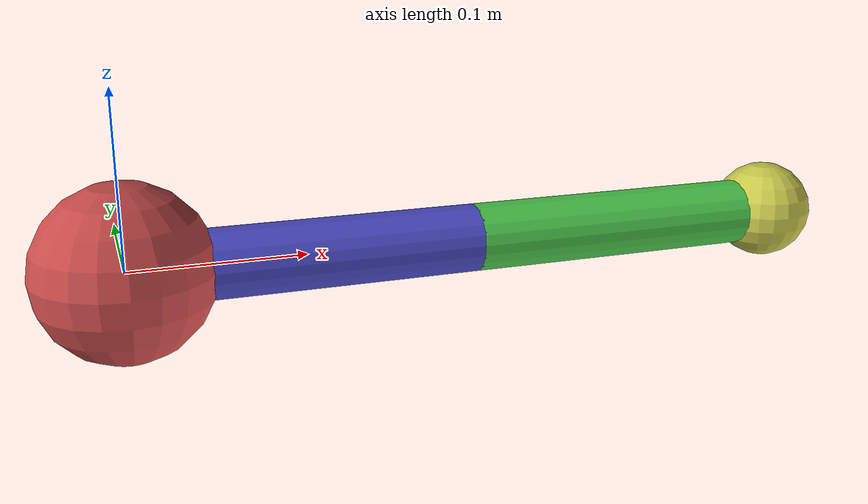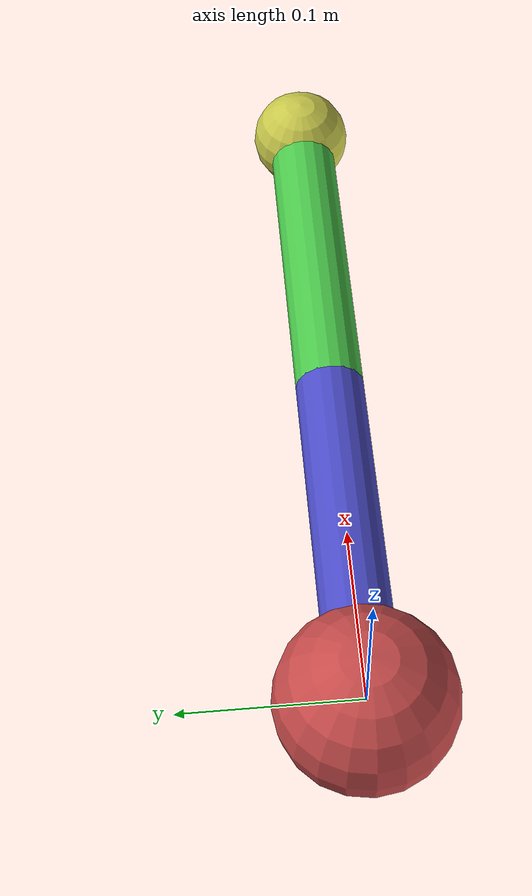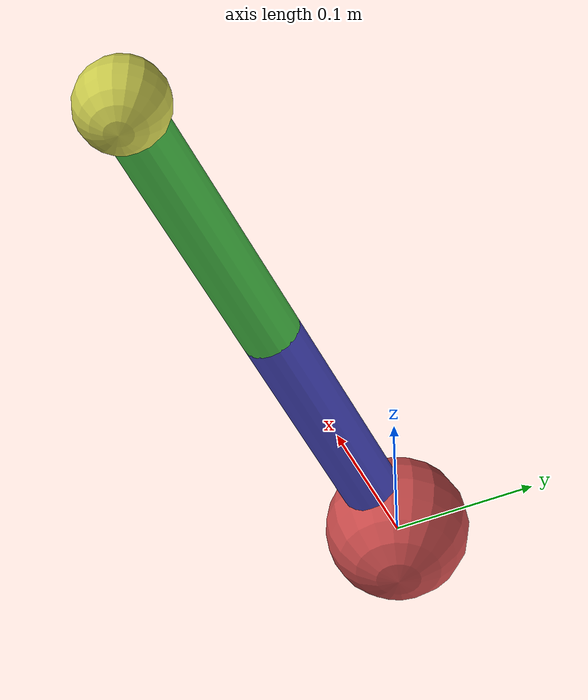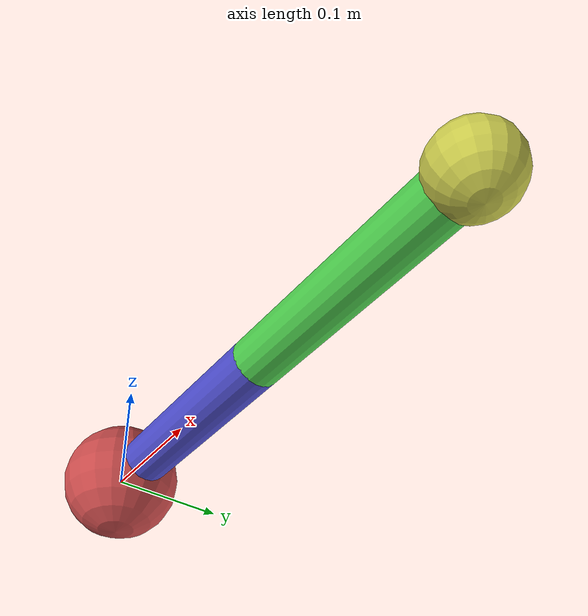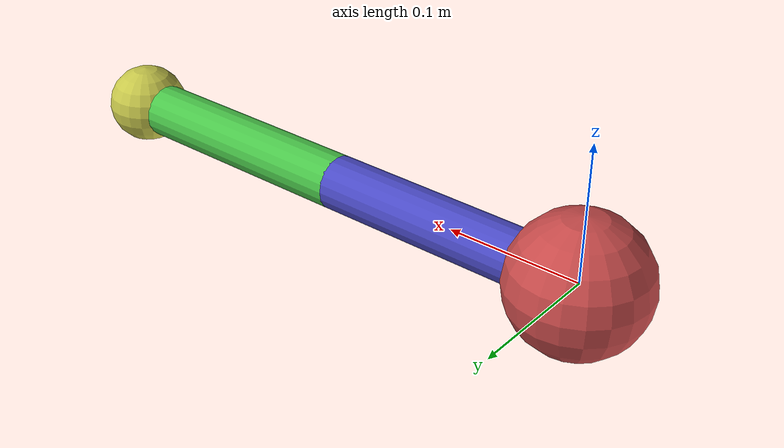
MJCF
<mujoco model="reacher">
    <compiler angle="degree" coordinate="local"/>
    <option timestep="0.01" gravity="0 0 -9.81"/>

    <worldbody>
        <body name="base" pos="0 0 0">
            <geom name="base_geom" type="sphere" size="0.05" rgba="0.8 0.3 0.3 1"/>

            <body name="link1" pos="0 0 0">
                <joint name="joint1" type="hinge" axis="0 0 1"/>
                <geom name="link1_geom" type="capsule" fromto="0 0 0 0.2 0 0" size="0.02" rgba="0.3 0.3 0.8 1"/>

                <body name="link2" pos="0.2 0 0">
                    <joint name="joint2" type="hinge" axis="0 0 1"/>
                    <geom name="link2_geom" type="capsule" fromto="0 0 0 0.2 0 0" size="0.02" rgba="0.3 0.8 0.3 1"/>

                    <body name="tip" pos="0.2 0 0">
                        <geom name="tip_geom" type="sphere" size="0.03" rgba="0.8 0.8 0.3 1"/>
                    </body>
                </body>
            </body>
        </body>
    </worldbody>

    <actuator>
        <motor joint="joint1" ctrlrange="-1 1" gear="100"/>
        <motor joint="joint2" ctrlrange="-1 1" gear="100"/>
    </actuator>
</mujoco>
